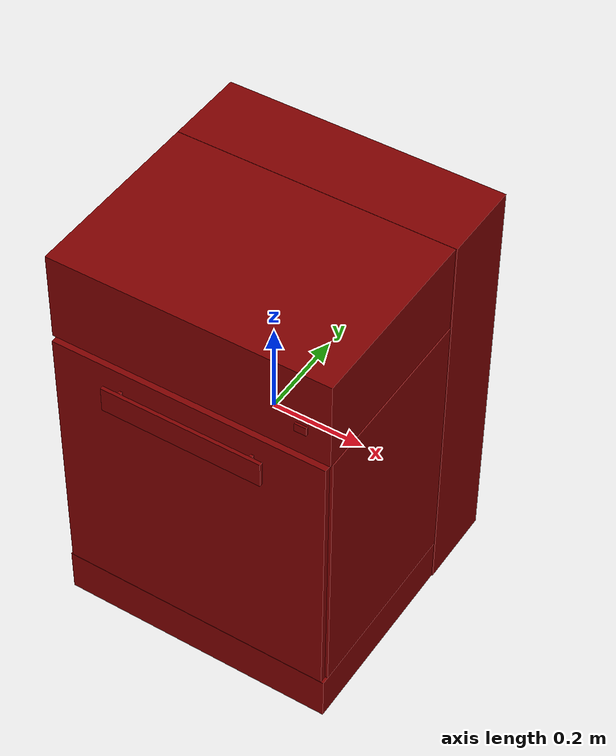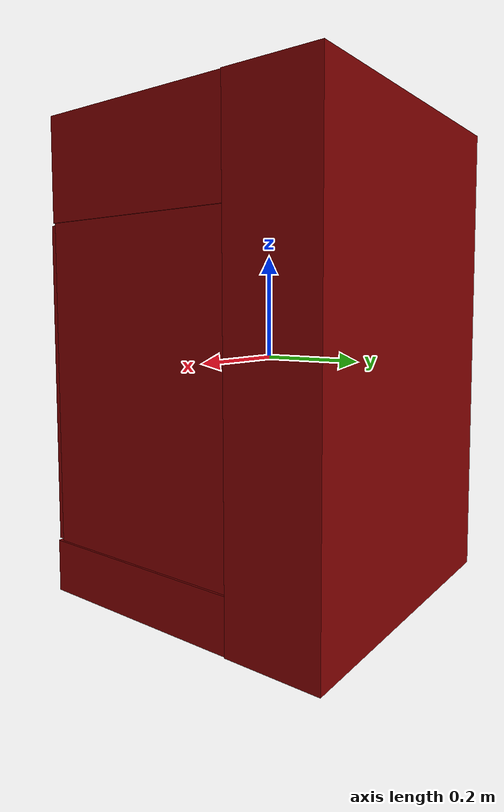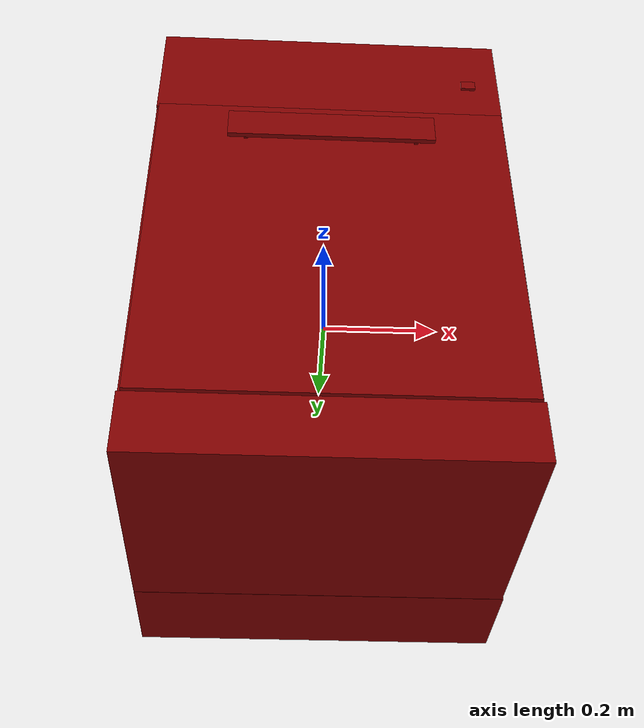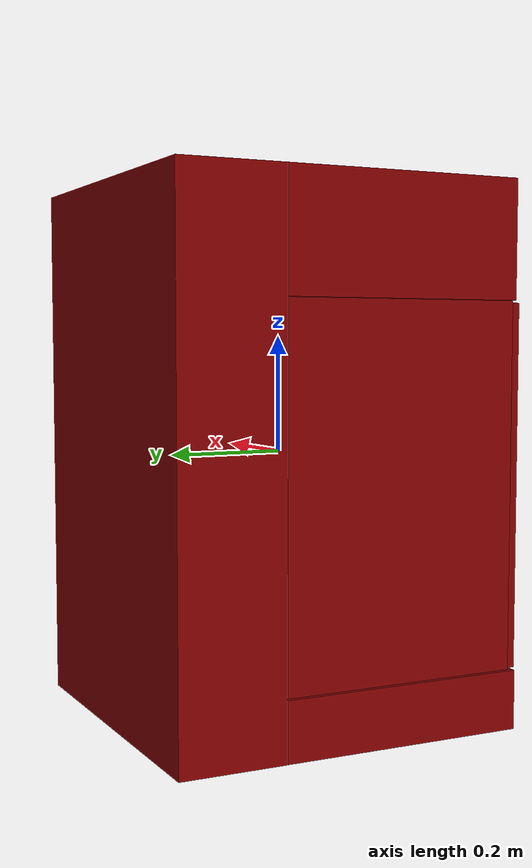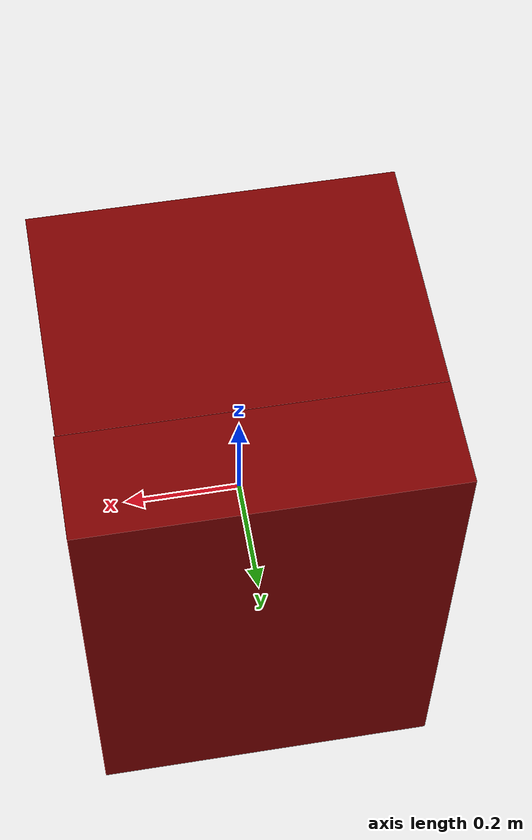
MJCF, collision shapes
<mujoco model="model">
  <compiler angle="radian"/>
  <asset>
    <mesh file="visuals/Body001.obj" name="Body001_vis"/>
    <mesh file="visuals/Button001.obj" name="Button001_vis"/>
    <mesh file="visuals/Container001.obj" name="Container001_vis"/>
    <mesh file="visuals/Container002.obj" name="Container002_vis"/>
    <mesh file="visuals/Door001.obj" name="Door001_vis"/>
    <mesh file="visuals/Handle001.obj" name="Handle001_vis"/>
    <texture file="visuals/T_BC001.png" name="Body001_material" type="2d"/>
    <material name="Body001_material" rgba="1 1 1 1.0" texture="Body001_material" shininess="0.5" specular="0.3103448502657381"/>
    <texture file="visuals/T_BC001.png" name="Button001_material" type="2d"/>
    <material name="Button001_material" rgba="1 1 1 1.0" texture="Button001_material" shininess="0.5" specular="0.3103448502657381"/>
    <texture file="visuals/T_BC001.png" name="Container001_material" type="2d"/>
    <material name="Container001_material" rgba="1 1 1 1.0" texture="Container001_material" shininess="0.5" specular="0.3103448502657381"/>
    <texture file="visuals/T_BC001.png" name="Container002_material" type="2d"/>
    <material name="Container002_material" rgba="1 1 1 1.0" texture="Container002_material" shininess="0.5" specular="0.3103448502657381"/>
    <texture file="visuals/T_BC001.png" name="Door001_material" type="2d"/>
    <material name="Door001_material" rgba="1 1 1 1.0" texture="Door001_material" shininess="0.5" specular="0.3103448502657381"/>
    <texture file="visuals/T_BC001.png" name="Handle001_material" type="2d"/>
    <material name="Handle001_material" rgba="1 1 1 1.0" texture="Handle001_material" shininess="0.5" specular="0.3103448502657381"/>
  </asset>
  <default>
    <default class="visual">
      <geom conaffinity="0" contype="0" group="1" type="mesh"/>
    </default>
    <default class="collision">
      <geom group="0" rgba="0.5 0 0 0.5"/>
    </default>
    <default class="spawn">
      <geom group="0" rgba="1 1 1 0.5" contype="0" conaffinity="0"/>
      <site group="0" rgba="1 1 1 0.5"/>
    </default>
    <default class="region">
      <geom group="1" conaffinity="0" contype="0" rgba="0 1 0 0"/>
    </default>
  </default>
  <worldbody>
    <body>
      <body name="object">
        <geom mesh="Body001_vis" type="mesh" solimp="0.998 0.998 0.001" solref="0.001 1" density="100" friction="0.95 0.3 0.1" class="visual" material="Body001_material"/>
        <geom class="collision" type="box" pos="-0.001410 -0.073747 0.354905" size="0.30072736740112305 0.20678281784057617 0.09752742946147919" quat="1.0 0.0 0.0 0.0"/>
        <geom class="collision" type="box" pos="0.000000 0.222717 0.000000" size="0.3021373748779297 0.08916520327329636 0.45243215560913086" quat="1.0 0.0 0.0 0.0"/>
        <geom class="collision" type="box" pos="-0.001055 -0.077791 -0.402490" size="0.3010820746421814 0.2105609029531479 0.04974154010415077" quat="1.0 0.0 0.0 0.0"/>
        <geom class="collision" type="box" pos="-0.282807 -0.070596 -0.046740" size="0.01932993344962597 0.20336568355560303 0.30315133929252625" quat="1.0 0.0 0.0 0.0"/>
        <geom class="collision" type="box" pos="0.282141 -0.070596 -0.046740" size="0.01850888319313526 0.20336568355560303 0.30315133929252625" quat="1.0 0.0 0.0 0.0"/>
        <body name="Button001">
          <joint axis="0.0 1.0 0.0" pos="0.243456 -0.289630 0.330335" limited="true" name="Button001_joint" range="0.0 0.002" type="slide" damping="1" frictionloss="1" armature=".01" stiffness="0.05"/>
          <geom mesh="Button001_vis" type="mesh" solimp="0.998 0.998 0.001" solref="0.001 1" density="100" friction="0.95 0.3 0.1" class="visual" material="Button001_material"/>
          <geom class="collision" type="box" pos="0.243456 -0.289968 0.330432" size="0.012506443075835705 0.002330385847017169 0.009121621958911419" quat="1.0 0.0 0.0 0.0"/>
        </body>
        <body name="Container001">
          <joint axis="0.0 -1.0 0.0" pos="-0.001358 -0.044638 0.101498" limited="true" name="Container001_joint" range="0.0 0.1" type="slide" damping="1" frictionloss="1" armature=".01" stiffness="0.05"/>
          <geom mesh="Container001_vis" type="mesh" solimp="0.998 0.998 0.001" solref="0.001 1" density="100" friction="0.95 0.3 0.1" class="visual" material="Container001_material"/>
          <geom class="collision" type="box" pos="-0.227968 -0.045493 0.106736" size="0.003684659954160452 0.15972277522087097 0.095975860953331" quat="1.0 0.0 0.0 0.0"/>
          <geom class="collision" type="box" pos="0.226396 -0.045493 0.106736" size="0.005423170048743486 0.15972277522087097 0.095975860953331" quat="1.0 0.0 0.0 0.0"/>
          <geom class="collision" type="box" pos="-0.000779 -0.045007 0.008864" size="0.2215963453054428 0.15355537831783295 0.009440953843295574" quat="1.0 0.0 0.0 0.0"/>
          <geom class="collision" type="box" pos="-0.001323 0.106644 0.106736" size="0.22244107723236084 0.005987260024994612 0.095975860953331" quat="1.0 0.0 0.0 0.0"/>
          <geom class="collision" type="box" pos="-0.001323 -0.197534 0.106736" size="0.22244107723236084 0.007363989017903805 0.095975860953331" quat="1.0 0.0 0.0 0.0"/>
        </body>
        <body name="Container002">
          <joint axis="0.0 -1.0 0.0" pos="-0.001358 -0.044638 -0.205033" limited="true" name="Container002_joint" range="0.0 0.1" type="slide" damping="1" frictionloss="1" armature=".01" stiffness="0.05"/>
          <geom mesh="Container002_vis" type="mesh" solimp="0.998 0.998 0.001" solref="0.001 1" density="100" friction="0.95 0.3 0.1" class="visual" material="Container002_material"/>
          <geom class="collision" type="box" pos="-0.001323 -0.197534 -0.198467" size="0.22244107723236084 0.007363989017903805 0.095975860953331" quat="1.0 0.0 0.0 0.0"/>
          <geom class="collision" type="box" pos="-0.001323 0.106644 -0.198467" size="0.22244107723236084 0.005987260024994612 0.095975860953331" quat="1.0 0.0 0.0 0.0"/>
          <geom class="collision" type="box" pos="-0.000779 -0.045007 -0.299167" size="0.2215963453054428 0.15355537831783295 0.008880271576344967" quat="1.0 0.0 0.0 0.0"/>
          <geom class="collision" type="box" pos="0.226363 -0.045493 -0.198467" size="0.005456643644720316 0.15972277522087097 0.095975860953331" quat="1.0 0.0 0.0 0.0"/>
          <geom class="collision" type="box" pos="-0.227968 -0.045493 -0.198467" size="0.003684659954160452 0.15972277522087097 0.095975860953331" quat="1.0 0.0 0.0 0.0"/>
        </body>
        <body name="Door001">
          <joint axis="1.0 0.0 0.0" pos="-0.000779 -0.288170 -0.348796" limited="true" name="Door001_joint" range="0.0 0.5235987755982988" type="hinge" damping="1" frictionloss="1" armature=".01" stiffness="0.05"/>
          <geom mesh="Door001_vis" type="mesh" solimp="0.998 0.998 0.001" solref="0.001 1" density="100" friction="0.95 0.3 0.1" class="visual" material="Door001_material"/>
          <geom class="collision" type="box" pos="-0.000654 -0.283442 -0.047905" size="0.29616594314575195 0.006891924422234297 0.3010178804397583" quat="1.0 0.0 0.0 0.0"/>
          <body name="Handle001">
            <geom mesh="Handle001_vis" type="mesh" solimp="0.998 0.998 0.001" solref="0.001 1" density="100" friction="0.95 0.3 0.1" class="visual" material="Handle001_material"/>
            <geom class="collision" type="box" pos="-0.000959 -0.307860 0.187507" size="0.17370398342609406 0.004000186920166016 0.027860576286911964" quat="1.0 0.0 0.0 0.0"/>
            <geom class="collision" type="box" pos="-0.144148 -0.294814 0.188597" size="0.003253332572057843 0.008951758965849876 0.017520004883408546" quat="7.549790126404332e-08 1.0 0.0 0.0"/>
            <geom class="collision" type="box" pos="0.142663 -0.294814 0.188597" size="0.003253332572057843 0.008951758965849876 0.017520004883408546" quat="7.549790126404332e-08 1.0 0.0 0.0"/>
          </body>
        </body>
        <geom class="region" name="reg_main" type="box" pos="-0.0007419999999999927 7.499999999993623e-06 -0.0004750000000000032" size="0.30000000000000004 0.3117995 0.45"/>
        <geom class="region" name="reg_int" type="box" pos="-0.0021809999999999885 -0.06323050000000001 -0.0889075" size="0.258424 0.2083275 0.3072905"/>
      </body>
    </body>
  </worldbody>
  <actuator>
    <motor name="Button001_joint_actuator" joint="Button001_joint" gear="0.1"/>
    <motor name="Container001_joint_actuator" joint="Container001_joint" gear="10"/>
    <motor name="Container002_joint_actuator" joint="Container002_joint" gear="10"/>
    <motor name="Door001_joint_actuator" joint="Door001_joint" gear="50"/>
  </actuator>
</mujoco>
